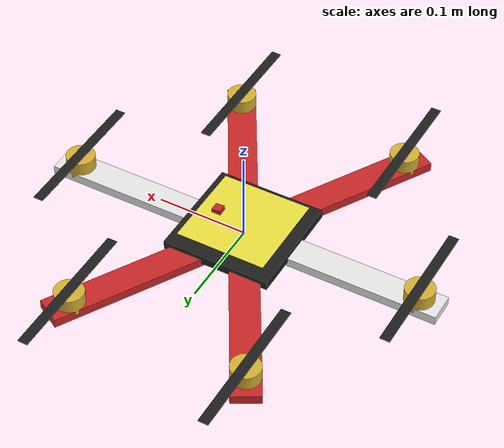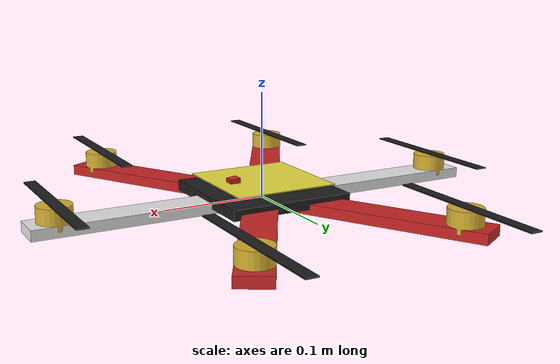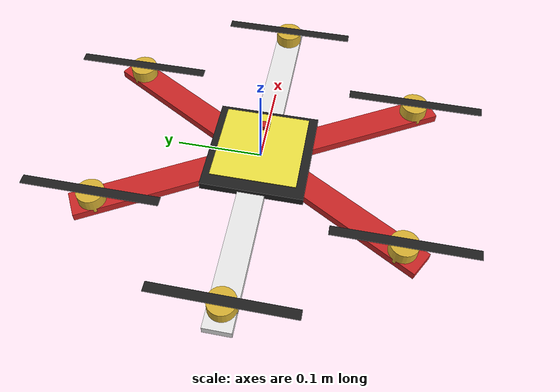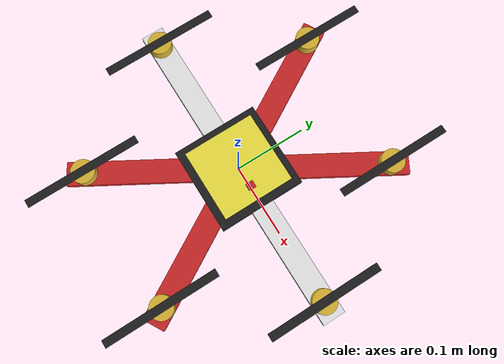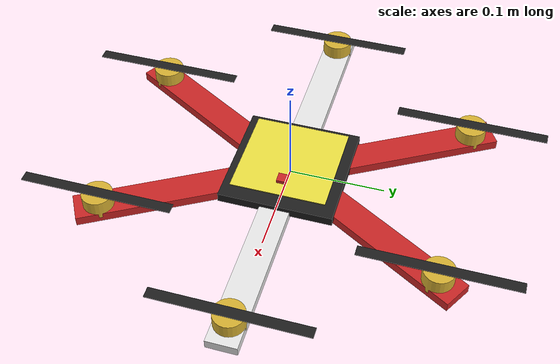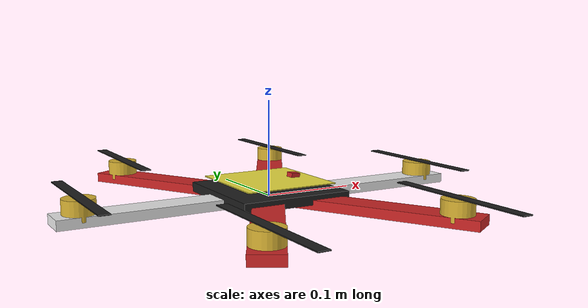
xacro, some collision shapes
<?xml version="1.0"?>
<robot xmlns:xacro="http://www.ros.org/wiki/xacro" name="Kwad">
	<xacro:property name="width" value="0.0315" />
	<xacro:property name="length" value="0.45" />
	<xacro:property name="height" value="0.01" />
	<xacro:property name="mass_fr" value="0.5" />
	<xacro:property name="mass_pr" value="0.0055" />
	<xacro:property name="pi_value" value="3.14159263" />
	<xacro:property name="radiusp" value="0.20" />
	<xacro:property name="prop_loc" value="0.15909" />
	<xacro:include filename="$(find dd_gazebo)/src/description/urdf/material.xacro" />
	<xacro:include filename="$(find dd_gazebo)/src/description/urdf/Kwad.gazebo" />
	<!-- Define inertial macro -->
	<xacro:macro name="default_inertial" params="mass p ix_value iy_value iz_value" >
		<inertial>
			<origin xyz="0 0 0" rpy="0 0 ${p}" />
			<mass value="${mass}" />
			<inertia ixx="${ix_value}" ixy="0" ixz="0"
					 iyy="${iy_value}" iyz="0" izz="${iz_value}" />
		</inertial>
	</xacro:macro>
	<link name="base_link1">
		<visual>
			<origin xyz="0 0 0" rpy="0 0 ${pi_value/6}" />

			<geometry>
				<box size="${width} ${length} ${height}" />
			</geometry>

			<material name="red" />
		</visual>

		<collision>
			<origin xyz="0 0 0" rpy="0 0 ${pi_value/6}" />

			<geometry>
				<box size="${width} ${length} ${height}" />
			</geometry>
		</collision>

		<xacro:default_inertial mass="${mass_fr}" p="${pi_value/6}" ix_value="${0.04989/2}" iy_value="${0.04989/2}" iz_value="${0.24057/2}" />

	</link>
	<link name="base_link2">
		<visual>
			<origin xyz="0 0 0" rpy="0 0 ${-pi_value/6}" />

			<geometry>
				<box size="${width} ${length} ${height}" />
			</geometry>

			<material name="red" />
		</visual>

		<collision>
			<origin xyz="0
			 0 0" rpy="0 0 ${-pi_value/6}" />

			<geometry>
				<box size="${width} ${length} ${height}" />
			</geometry>
		</collision>

		<xacro:default_inertial mass="${mass_fr}" p="${-pi_value/6}" ix_value="${0.04989/2}" iy_value="${0.04989/2}" iz_value="${0.24057/2}" />
	</link>

	<link name="base_link3">
		<visual>
			<origin xyz="0 0 0" rpy="0 0 ${pi_value/2}" />

			<geometry>
				<box size="${width} ${length} ${height}" />
			</geometry>

			<material name="white" />
		</visual>

		<collision>
			<origin xyz="0
			 0 0" rpy="0 0 ${pi_value/2}" />

			<geometry>
				<box size="${width} ${length} ${height}" />
			</geometry>
		</collision>

		<xacro:default_inertial mass="${mass_fr}" p="${pi_value/2}" ix_value="${0.04989/2}" iy_value="${0.04989/2}" iz_value="${0.24057/2}" />
	</link>

	<link name="plate1">
		<visual>
			<origin xyz="0 0 0" rpy="0 0 0" />

			<geometry>
				<box size="${0.12} ${0.12} ${0.01}" />
			</geometry>

			<material name="black" />
		</visual>

		<collision>
			<origin xyz="0 0 0" rpy="0 0 0" />

			<geometry>
				<box size="${0.12} ${0.12} ${0.01}" />
			</geometry>
		</collision>

		<xacro:default_inertial mass="${0.01}" p="${0}" ix_value="${0}" iy_value="${0}" iz_value="${2.4-5}" />
	</link>
	<link name="plate2">
		<visual>
			<origin xyz="0 0 0" rpy="0 0 0" />

			<geometry>
				<box size="${0.05} ${0.03} ${0.005}" />
			</geometry>

			<material name="blue" />
		</visual>

		<collision>
			<origin xyz="0 0 0" rpy="0 0 0" />

			<geometry>
				<box size="${0.05} ${0.03} ${0.005}" />
			</geometry>
		</collision>

		<xacro:default_inertial mass="${0.001}" p="${0}" ix_value="${0}" iy_value="${0}" iz_value="${8.1666-7}" />
	</link>
	<link name="cyl1">
		<visual>
			<origin xyz="0 0 0" rpy="0 0 ${pi_value/2}" />

			<geometry>
				<cylinder radius="0.016" length="0.02" />
			</geometry>

			<material name="golden" />
		</visual>

		<collision>
			<origin xyz="0 0 0" rpy="0 0 ${pi_value/2}" />

			<geometry>
				<cylinder radius="0.016" length="0.02" />
			</geometry>
		</collision>

		<xacro:default_inertial mass="${0.01}" p="${0}" ix_value="${8.95e-6}" iy_value="${8.95e-6}" iz_value="${2.23e-4}" />
	</link>
	<link name="cyl2">
		<visual>
			<origin xyz="0 0 0" rpy="0 0 0" />

			<geometry>
				<cylinder radius="0.016" length="0.02" />
			</geometry>

			<material name="golden" />
		</visual>

		<collision>
			<origin xyz="0 0 0" rpy="0 0 0" />

			<geometry>
				<cylinder radius="0.016" length="0.02" />
			</geometry>
		</collision>

		<xacro:default_inertial mass="${0.01}" p="${0}" ix_value="${8.95e-6}" iy_value="${8.95e-6}" iz_value="${2.23e-4}" />
	</link>
	<link name="cyl3">
		<visual>
			<origin xyz="0 0 0" rpy="0 0 0" />

			<geometry>
				<cylinder radius="0.016" length="0.02" />
			</geometry>

			<material name="golden" />
		</visual>

		<collision>
			<origin xyz="0 0 0" rpy="0 0 0" />

			<geometry>
				<cylinder radius="0.016" length="0.02" />
			</geometry>
		</collision>

		<xacro:default_inertial mass="${0.01}" p="${0}" ix_value="${8.95e-6}" iy_value="${8.95e-6}" iz_value="${2.23e-4}" />
	</link>
	<link name="cyl4">
		<visual>
			<origin xyz="0 0 0" rpy="0 0 0" />

			<geometry>
				<cylinder radius="0.016" length="0.02" />
			</geometry>

			<material name="golden" />
		</visual>

		<collision>
			<origin xyz="0 0 0" rpy="0 0 0" />

			<geometry>
				<cylinder radius="0.016" length="0.02" />
			</geometry>
		</collision>

		<xacro:default_inertial mass="${0.01}" p="${0}" ix_value="${8.95e-6}" iy_value="${8.95e-6}" iz_value="${2.23e-4}" />
	</link>

		<link name="cyl5">
		<visual>
			<origin xyz="0 0 0" rpy="0 0 0" />

			<geometry>
				<cylinder radius="0.016" length="0.02" />
			</geometry>

			<material name="golden" />
		</visual>

		<collision>
			<origin xyz="0 0 0" rpy="0 0 0" />

			<geometry>
				<cylinder radius="0.016" length="0.02" />
			</geometry>
		</collision>

		<xacro:default_inertial mass="${0.01}" p="${0}" ix_value="${8.95e-6}" iy_value="${8.95e-6}" iz_value="${2.23e-4}" />
	</link>

	<link name="cyl6">
		<visual>
			<origin xyz="0 0 0" rpy="0 0 0" />

			<geometry>
				<cylinder radius="0.016" length="0.02" />
			</geometry>

			<material name="golden" />
		</visual>

		<collision>
			<origin xyz="0 0 0" rpy="0 0 0" />

			<geometry>
				<cylinder radius="0.016" length="0.02" />
			</geometry>
		</collision>

		<xacro:default_inertial mass="${0.01}" p="${0}" ix_value="${8.95e-6}" iy_value="${8.95e-6}" iz_value="${2.23e-4}" />
	</link>
	<link name="arduino">
		<visual>
			<origin xyz="0 0 0" rpy="0 0 0" />
			<geometry>
				<mesh filename="package://dd_gazebo/src/description/meshes/22V10.dae" scale="0.005 0.005 0.005" />
			</geometry>
		</visual>
		<collision>
			<origin xyz="0 0 0" rpy="0 0 0" />
			<geometry>
				<box size="0.1 0.1 0.001" />
			</geometry>
		</collision>
		<xacro:default_inertial mass="${0.05}" p="${0}" ix_value="${0}" iy_value="${0}" iz_value="${8.33333e-5}" />
	</link>
	<link name="camera_link">
		<visual>
			<origin xyz="0 0 0" rpy="0 0 0" />
			<geometry>
				<box size="0.01 0.01 0.01" />
			</geometry>

			<material name="red" />

		</visual>

		<collision>
			<origin xyz="0 0 0" rpy="0 0 0" />
			<geometry>
				<box size="0.01 0.01 0.01" />
			</geometry>
		</collision>

		<xacro:default_inertial mass="${1e-5}" p="${0}" ix_value="${1e-6}" iy_value="${1e-6}" iz_value="${1e-6}" />
	</link>
	<!-- Propellers of the quad: fr, fl, br, bl -->
	<link name="prop_front_right">
		<visual>
			<origin xyz="0 0 0" rpy="0 0 0" />

			<geometry>
				<box size="${0.03302/3} ${radiusp*0.8} ${0.001}" />
			</geometry>

			<material name="black" />
		</visual>

		<collision>
			<origin xyz="0 0 0" rpy="0 0 0" />

			<geometry>
				<box size="${0.03302/3} ${radiusp*0.8} ${0.001}" />
			</geometry>
		</collision>

		<xacro:default_inertial mass="${mass_pr}" p="${0}" ix_value="${0}" iy_value="${0}" iz_value="${4.42448e-5}" />
	</link>

	<link name="prop_front_left">
		<visual>
			<origin xyz="0 0 0" rpy="0 0 0" />

			<geometry>
				<box size="${0.03302/3} ${radiusp*0.8} ${0.001}" />
			</geometry>

			<material name="black"/>
		</visual>

		<collision>
			<origin xyz="0 0 0" rpy="0 0 0" />

			<geometry>
				<box size="${0.03302/3} ${radiusp*0.8} ${0.001}" />
			</geometry>
		</collision>

		<xacro:default_inertial mass="${mass_pr}" p="${0}"  ix_value="${0}" iy_value="${0}" iz_value="${4.42448e-5}" />

	</link>

	<link name="prop_back_right">
		<visual>
			<origin xyz="0 0 0" rpy="0 0 0" />

			<geometry>
				<box size="${0.03302/3} ${radiusp*0.8} ${0.001}" />
			</geometry>

			<material name="black"/>
		</visual>

		<collision>
			<origin xyz="0 0 0" rpy="0 0 0" />

			<geometry>
				<box size="${0.03302/3} ${radiusp*0.8} ${0.001}" />
			</geometry>
		</collision>

		<xacro:default_inertial mass="${mass_pr}" p="${0}"  ix_value="${0}" iy_value="${0}" iz_value="${4.42448e-5}" />

	</link>

	<link name="prop_back_left">
		<visual>
			<origin xyz="0 0 0" rpy="0 0 0" />

			<geometry>
				<box size="${0.03302/3} ${radiusp*0.8} ${0.001}" />
			</geometry>

			<material name="black"/>
		</visual>

		<collision>
			<origin xyz="0 0 0" rpy="0 0 0" />

			<geometry>
				<box size="${0.03302/3} ${radiusp*0.8} ${0.001}" />
			</geometry>
		</collision>

		<xacro:default_inertial mass="${mass_pr}" p="${0}"  ix_value="${0}" iy_value="${0}" iz_value="${4.42448e-5}" />

	</link>

		<link name="prop_left">
		<visual>
			<origin xyz="0 0 0" rpy="0 0 0" />

			<geometry>
				<box size="${0.03302/3} ${radiusp*0.8} ${0.001}" />
			</geometry>

			<material name="black"/>
		</visual>

		<collision>
			<origin xyz="0 0 0" rpy="0 0 0" />

			<geometry>
				<box size="${0.03302/3} ${radiusp*0.8} ${0.001}" />
			</geometry>
		</collision>

		<xacro:default_inertial mass="${mass_pr}" p="${0}"  ix_value="${0}" iy_value="${0}" iz_value="${4.42448e-5}" />

	</link>

		<link name="prop_right">
		<visual>
			<origin xyz="0 0 0" rpy="0 0 0" />

			<geometry>
				<box size="${0.03302/3} ${radiusp*0.8} ${0.001}" />
			</geometry>

			<material name="black"/>
		</visual>

		<collision>
			<origin xyz="0 0 0" rpy="0 0 0" />

			<geometry>
				<box size="${0.03302/3} ${radiusp*0.8} ${0.001}" />
			</geometry>
		</collision>

		<xacro:default_inertial mass="${mass_pr}" p="${0}"  ix_value="${0}" iy_value="${0}" iz_value="${4.42448e-5}" />

	</link>

	<!-- Define the joint between the arms of the frame -->
	<joint name="center" type="fixed">
		<parent link="base_link1" />
		<child link="base_link2" />

		<origin xyz="0 0 0" rpy="0 0 0"/>
		<axis xyz="0 0 1" />
	</joint>

	<joint name="center2" type="fixed">
		<parent link="base_link2" />
		<child link="base_link3" />

		<origin xyz="0 0 0" rpy="0 0 0"/>
		<axis xyz="0 0 1" />
	</joint>
	<!-- Define joint between prop fr and frame -->
	<joint name="joint_front_right_prop" type="continuous">
		<parent link="base_link2" />
		<child link="prop_front_right" />
		<origin xyz="0.1 0.1732 0.021" rpy="0 0 0"/>
		<axis xyz="0 0 1" />
	</joint>
	<!-- Define joint between prop fl and frame -->
	<joint name="joint_front_left_prop" type="continuous">
		<parent link="base_link1" />
		<child link="prop_front_left" />
		<origin xyz="-0.1 0.1732 0.021" rpy="0 0 0" />
		<axis xyz="0 0 1" />
	</joint>
<!-- Define joint between prop br and frame -->
	<joint name="joint_back_right_prop" type="continuous">
		<parent link="base_link1" />
		<child link="prop_back_right" />
		<origin xyz="-0.1 -0.1732 0.021" rpy="0 0 0" />
		<axis xyz="0 0 1" />
	</joint>
<!-- Define joint between prop br and frame -->
	<joint name="joint_back_left_prop" type="continuous">
		<parent link="base_link2" />
		<child link="prop_back_left" />
		<origin xyz="0.1 -0.1732 0.021" rpy="0 0 0" />
		<axis xyz="0 0 1" />
	</joint>

	<joint name="joint_left_prop" type="continuous">
		<parent link="base_link3" />
		<child link="prop_left" />
		<origin xyz="-0.200 0 0.021" rpy="0 0 0" />
		<axis xyz="0 0 1" />
	</joint>

		<joint name="joint_right_prop" type="continuous">
		<parent link="base_link3" />
		<child link="prop_right" />
		<origin xyz="0.200 0 0.021" rpy="0 0 0" />
		<axis xyz="0 0 1" />
	</joint>

<!-- Define joint between plate1 and frame -->
	<joint name="joint_plate1_frame" type="fixed">
		<parent link="base_link2" />
		<child link="plate1" />
		<origin xyz="${0} ${0} 0.005" rpy="0 0 0" />
		<axis xyz="0 0 1" />
	</joint>
<!-- Define joint between plate1 and plate2 -->
	<joint name="joint_plate2_frame" type="fixed">
		<parent link="plate1" />
		<child link="plate2" />
		<origin xyz="${0} ${0} 0.007" rpy="0 0 0" />
		<axis xyz="0 0 1" />
	</joint>
<!-- Define joint between cyl1 and frame -->
	<joint name="joint_cyl1_frame" type="fixed">
		<parent link="base_link2" />
		<child link="cyl1" />
		<origin xyz="0.1 0.1732 0.01" rpy="0 0 0" />
		<axis xyz="0 0 1" />
	</joint>
<!-- Define joint between cyl2 and frame -->
	<joint name="joint_cyl2_frame" type="fixed">
		<parent link="base_link2" />
		<child link="cyl2" />
		<origin xyz="-0.1 0.1732 0.01" rpy="0 0 0" />
		<axis xyz="0 0 1" />
	</joint>
<!-- Define joint between cyl3 and frame -->
	<joint name="joint_cyl3_frame" type="fixed">
		<parent link="base_link1" />
		<child link="cyl3" />
		<origin xyz="-0.1 -0.1732 0.01" rpy="0 0 0" />
		<axis xyz="0 0 1" />
	</joint>
<!-- Define joint between cyl4 and frame -->
	<joint name="joint_cyl4_frame" type="fixed">
		<parent link="base_link1" />
		<child link="cyl4" />
		<origin xyz="0.1 -0.1732 0.01" rpy="0 0 0" />
		<axis xyz="0 0 1" />
	</joint>

	<joint name="joint_cyl5_frame" type="fixed">
		<parent link="base_link1" />
		<child link="cyl5" />
		<origin xyz="0.200 0 0.01" rpy="0 0 0" />
		<axis xyz="0 0 1" />
	</joint>

	<joint name="joint_cyl6_frame" type="fixed">
		<parent link="base_link1" />
		<child link="cyl6" />
		<origin xyz="-0.200 0 0.01" rpy="0 0 0" />
		<axis xyz="0 0 1" />
	</joint>
<!-- Define joint between Arduino and frame -->
	<joint name="joint_arduino_frame" type="fixed">
		<parent link="plate2" />
		<child link="arduino" />
		<origin xyz="${0} ${0} 0.005" rpy="0 0 0" />
		<axis xyz="0 0 1" />
	</joint>
<!-- Define joint between Arduino and frame -->
	<joint name="joint_camera_frame" type="fixed">
		<parent link="plate2" />
		<child link="camera_link" />
		<origin xyz="${0.03} ${0} 0.005" rpy="0 0.1 0" />
		<axis xyz="0 0 1" />
	</joint>
<!-- Add transmission elements -->
	<transmission name="front_right_motor_joint" >
		<type>transmission_interface/SimpleTransmission</type>
		<joint name="joint_front_right_prop">
			<hardwareInterface>hardware_interface/VelocityJointInterface</hardwareInterface>
		</joint>
		<actuator name="BLDC_motor1">
			<hardwareInterface>hardware_interface/VelocityJointInterface</hardwareInterface>
			<mechanicalReduction>1</mechanicalReduction>
		</actuator>
	</transmission>

	<transmission name="front_left_motor_joint" >
		<type>transmission_interface/SimpleTransmission</type>
		<joint name="joint_front_left_prop">
			<hardwareInterface>hardware_interface/VelocityJointInterface</hardwareInterface>
		</joint>
		<actuator name="BLDC_motor2">
			<hardwareInterface>hardware_interface/VelocityJointInterface</hardwareInterface>
			<mechanicalReduction>1</mechanicalReduction>
		</actuator>
	</transmission>

	<transmission name="left_motor_joint" >
		<type>transmission_interface/SimpleTransmission</type>
		<joint name="joint_left_prop">
			<hardwareInterface>hardware_interface/VelocityJointInterface</hardwareInterface>
		</joint>
		<actuator name="BLDC_motor6">
			<hardwareInterface>hardware_interface/VelocityJointInterface</hardwareInterface>
			<mechanicalReduction>1</mechanicalReduction>
		</actuator>

	</transmission>

	<transmission name="back_right_motor_joint" >
		<type>transmission_interface/SimpleTransmission</type>
		<joint name="joint_back_right_prop">
			<hardwareInterface>hardware_interface/VelocityJointInterface</hardwareInterface>
		</joint>
		<actuator name="BLDC_motor3">
			<hardwareInterface>hardware_interface/VelocityJointInterface</hardwareInterface>
			<mechanicalReduction>1</mechanicalReduction>
		</actuator>
	</transmission>

	<transmission name="back_left_motor_joint" >
		<type>transmission_interface/SimpleTransmission</type>
		<joint name="joint_back_left_prop">
			<hardwareInterface>hardware_interface/VelocityJointInterface</hardwareInterface>
		</joint>
		<actuator name="BLDC_motor4">
			<hardwareInterface>hardware_interface/VelocityJointInterface</hardwareInterface>
			<mechanicalReduction>1</mechanicalReduction>
		</actuator>
	</transmission>

		<transmission name="right_motor_joint" >
		<type>transmission_interface/SimpleTransmission</type>
		<joint name="joint_right_prop">
			<hardwareInterface>hardware_interface/VelocityJointInterface</hardwareInterface>
		</joint>
		<actuator name="BLDC_motor5">
			<hardwareInterface>hardware_interface/VelocityJointInterface</hardwareInterface>
			<mechanicalReduction>1</mechanicalReduction>
		</actuator>
	</transmission>

</robot>
